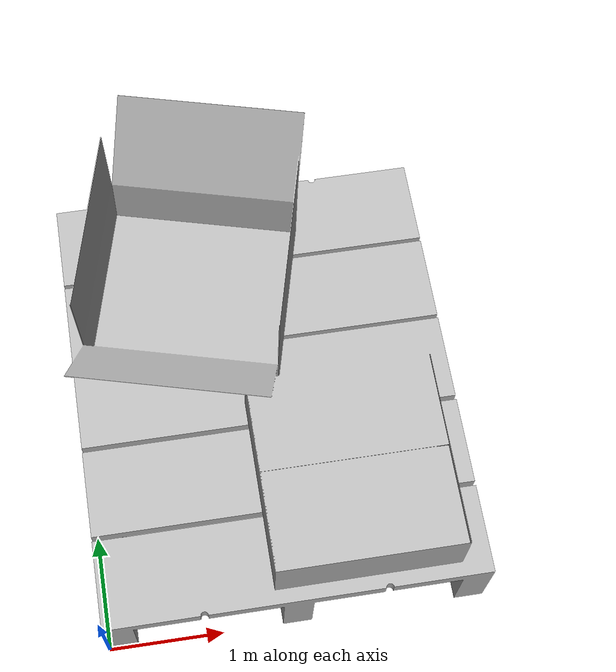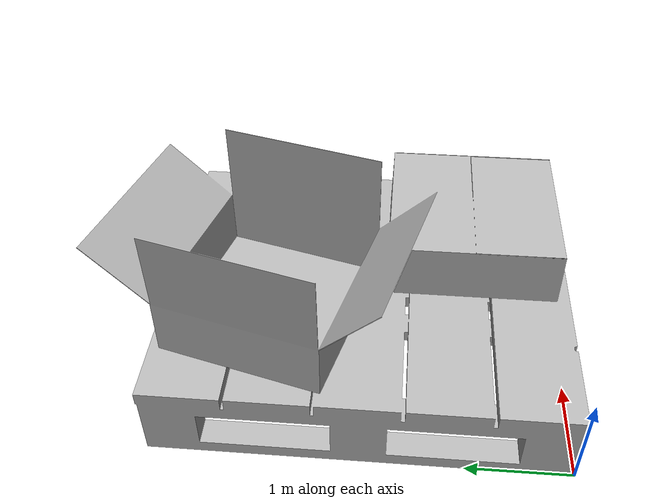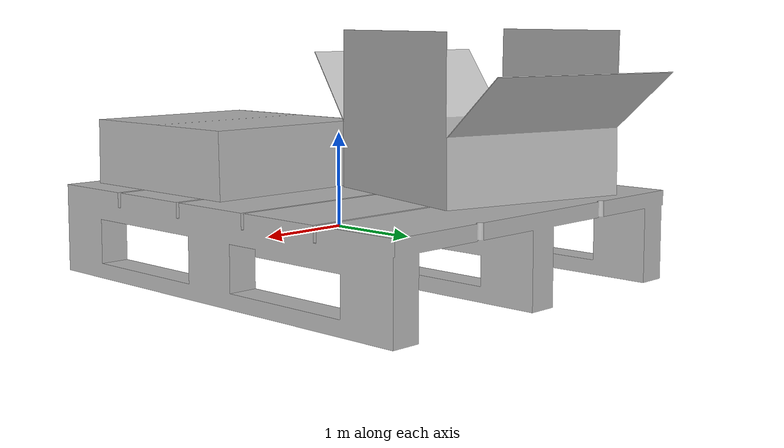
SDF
<?xml version="1.0" ?>
<sdf version="1.5">
  <model name="object02">
    <link name="link">
      <collision name="collision">
        <geometry>
          <mesh>
            <scale>0 0 0</scale>
            <uri>model://object02/meshes/model.dae</uri>
          </mesh>
        </geometry>
      </collision>
      <visual name="visual">
        <geometry>
          <mesh>
            <scale>5 5 5</scale>
            <uri>model://object02/meshes/model.dae</uri>
          </mesh>
        </geometry>
      </visual>
    </link>
  </model>
</sdf>
